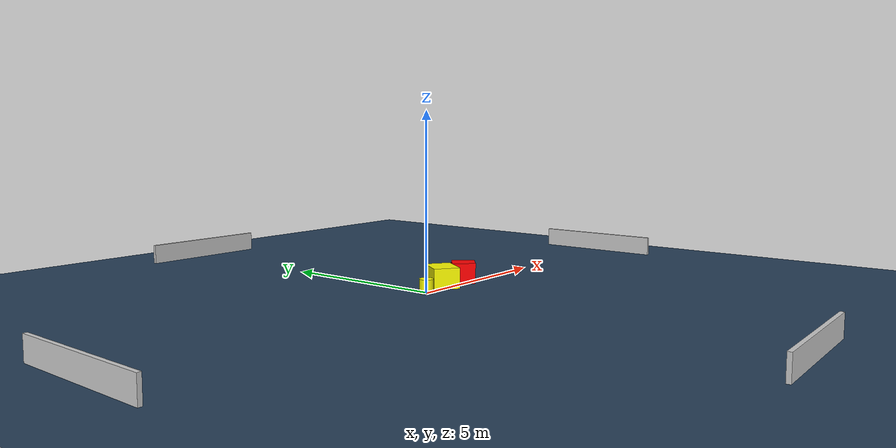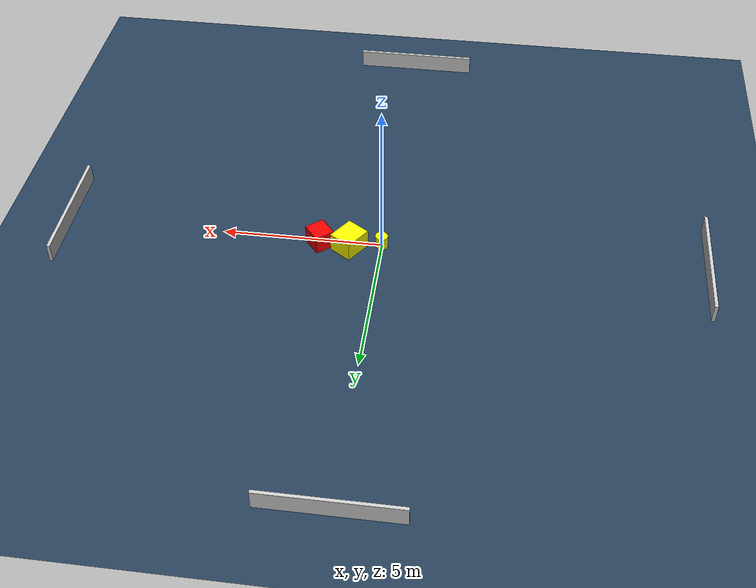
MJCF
<?xml version="1.0" ?>
<mujoco model="generated_environment">
  <option timestep="0.01" integrator="RK4" cone="elliptic"/>
  <default>
    <geom density="1"/>
  </default>
  <asset>
    <texture builtin="gradient" height="3072" name="skybox" rgb1="0.3 0.5 0.7" rgb2="0 0 0" type="skybox" width="512"/>
    <texture builtin="checker" height="300" name="groundplane" rgb1="0.2 0.3 0.4" rgb2="0.1 0.2 0.3" type="2d" width="300"/>
    <material name="groundplane" reflectance="0.2" texrepeat="5 5" texture="groundplane"/>
  </asset>
  <worldbody>
    <light dir="0 0 -1" directional="true" pos="0 0 1.5"/>
    <geom condim="3" friction="0.5 0.005 0.001" material="groundplane" name="floor" pos="0 0 0" size="0 0 0.05" type="plane"/>
    <body name="walls">
      <geom name="wall_1" condim="4" pos="-10.0 0.0 0.3" rgba="0.800000011920929 0.800000011920929 0.800000011920929 1.0" size="0.05 2.0 0.3" type="box"/>
      <geom name="wall_2" condim="4" pos="10.0 0.0 0.3" rgba="0.800000011920929 0.800000011920929 0.800000011920929 1.0" size="0.05 2.0 0.3" type="box"/>
      <geom name="wall_3" condim="4" pos="0.0 -10.0 0.3" rgba="0.800000011920929 0.800000011920929 0.800000011920929 1.0" size="2.0 0.05 0.3" type="box"/>
      <geom name="wall_4" condim="4" pos="0.0 10.0 0.3" rgba="0.800000011920929 0.800000011920929 0.800000011920929 1.0" size="2.0 0.05 0.3" type="box"/>
    </body>
    <body name="robot">
      <joint name="joint_x" type="slide" pos="0 0 0" axis="1 0 0"/>
      <joint name="joint_y" type="slide" pos="0 0 0" axis="0 1 0"/>
      <geom name="robot" type="cylinder" pos="0.0 0.0 0.2" size="0.2 0.2 0.0" mass="5.0" friction="1.0 0.005 0.0001" condim="4" rgba="1.0 1.0 0.0 1.0"/>
    </body>
    <body name="obstacle_1_movable">
      <geom name="obstacle_1_movable" condim="4" pos="0.9867028604101371 0.21479457098708296 0.3" euler="0 0 146.15435397166382" friction="0.0 0.005 0.001" rgba="1.0 1.0 0.0 1.0" size="0.38137232465508364 0.44456444812879736 0.3" type="box" mass="0.1"/>
      <joint type="free"/>
    </body>
    <body name="obstacle_2_static">
      <geom name="obstacle_2_static" condim="4" pos="1.9199019831858877 0.15699665328910478 0.3" euler="0 0 129.6242699472144" friction="0.0 0.005 0.001" rgba="1.0 0.0 0.0 1.0" size="0.33987453705023596 0.3132733136098881 0.3" type="box"/>
    </body>
  </worldbody>
  <actuator>
    <motor name="actuator_x" joint="joint_x" gear="1" ctrlrange="-1 1"/>
    <motor name="actuator_y" joint="joint_y" gear="1" ctrlrange="-1 1"/>
  </actuator>
</mujoco>
